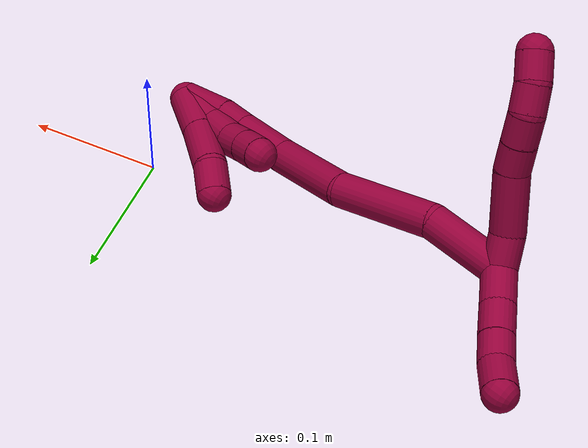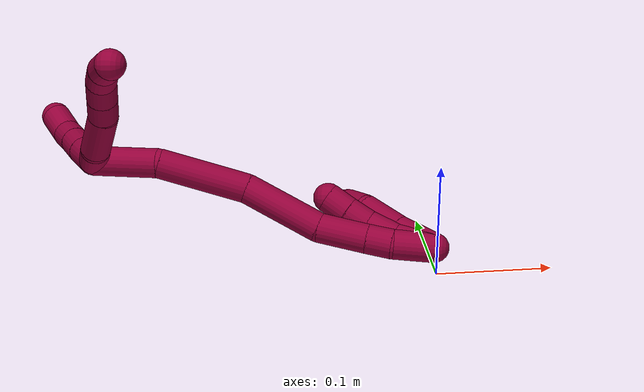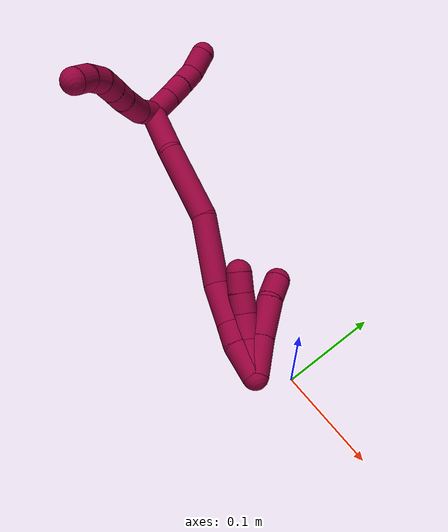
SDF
<sdf version="1.7">
 <world name="default">
  <model name="8">
   <static>0</static>
   <link name="8">
    <collision name="collision-cylinder-e_1_2_8">
     <pose>0.00598 -0.010199 -0.003956 1.94081 0.500253 0.714236</pose>
     <geometry><cylinder><radius>0.0125</radius><length>0.024934</length></cylinder></geometry>
     <surface>
      <friction><ode><mu>1.16</mu><mu2>1.16</mu2><slip1>0</slip1><slip2>0</slip2></ode></friction>
      <contact><ode><kp>1e+06</kp><kd>1</kd><max_vel>0</max_vel><min_depth>0.001</min_depth></ode></contact>
     </surface>
    </collision>
    <visual name="visual-cylinder-e_1_2_8">
     <pose>0.00598 -0.010199 -0.003956 1.94081 0.500253 0.714236</pose>
     <geometry><cylinder><radius>0.0125</radius><length>0.024934</length></cylinder></geometry>
     <material><ambient>0.584314 0 0.227451 1</ambient></material>
    </visual>
    <collision name="collision-cylinder-e_2_8_9">
     <pose>0.027451 -0.034051 -0.01565 2.0864 0.778927 1.2273</pose>
     <geometry><cylinder><radius>0.0125</radius><length>0.044103</length></cylinder></geometry>
     <surface>
      <friction><ode><mu>1.16</mu><mu2>1.16</mu2><slip1>0</slip1><slip2>0</slip2></ode></friction>
      <contact><ode><kp>1e+06</kp><kd>1</kd><max_vel>0</max_vel><min_depth>0.001</min_depth></ode></contact>
     </surface>
    </collision>
    <visual name="visual-cylinder-e_2_8_9">
     <pose>0.027451 -0.034051 -0.01565 2.0864 0.778927 1.2273</pose>
     <geometry><cylinder><radius>0.0125</radius><length>0.044103</length></cylinder></geometry>
     <material><ambient>0.584314 0 0.227451 1</ambient></material>
    </visual>
    <collision name="collision-cylinder-e_3_9_10">
     <pose>0.050465 -0.054224 -0.025049 1.82032 0.841128 1.04445</pose>
     <geometry><cylinder><radius>0.0125</radius><length>0.020185</length></cylinder></geometry>
     <surface>
      <friction><ode><mu>1.16</mu><mu2>1.16</mu2><slip1>0</slip1><slip2>0</slip2></ode></friction>
      <contact><ode><kp>1e+06</kp><kd>1</kd><max_vel>0</max_vel><min_depth>0.001</min_depth></ode></contact>
     </surface>
    </collision>
    <visual name="visual-cylinder-e_3_9_10">
     <pose>0.050465 -0.054224 -0.025049 1.82032 0.841128 1.04445</pose>
     <geometry><cylinder><radius>0.0125</radius><length>0.020185</length></cylinder></geometry>
     <material><ambient>0.584314 0 0.227451 1</ambient></material>
    </visual>
    <collision name="collision-cylinder-e_4_10_11">
     <pose>0.065503 -0.067675 -0.028495 1.82272 0.809731 1.01</pose>
     <geometry><cylinder><radius>0.0125</radius><length>0.020758</length></cylinder></geometry>
     <surface>
      <friction><ode><mu>1.16</mu><mu2>1.16</mu2><slip1>0</slip1><slip2>0</slip2></ode></friction>
      <contact><ode><kp>1e+06</kp><kd>1</kd><max_vel>0</max_vel><min_depth>0.001</min_depth></ode></contact>
     </surface>
    </collision>
    <visual name="visual-cylinder-e_4_10_11">
     <pose>0.065503 -0.067675 -0.028495 1.82272 0.809731 1.01</pose>
     <geometry><cylinder><radius>0.0125</radius><length>0.020758</length></cylinder></geometry>
     <material><ambient>0.584314 0 0.227451 1</ambient></material>
    </visual>
    <collision name="collision-cylinder-e_5_11_12">
     <pose>0.077937 -0.082633 -0.033662 1.96974 0.514083 0.754212</pose>
     <geometry><cylinder><radius>0.0125</radius><length>0.020004</length></cylinder></geometry>
     <surface>
      <friction><ode><mu>1.16</mu><mu2>1.16</mu2><slip1>0</slip1><slip2>0</slip2></ode></friction>
      <contact><ode><kp>1e+06</kp><kd>1</kd><max_vel>0</max_vel><min_depth>0.001</min_depth></ode></contact>
     </surface>
    </collision>
    <visual name="visual-cylinder-e_5_11_12">
     <pose>0.077937 -0.082633 -0.033662 1.96974 0.514083 0.754212</pose>
     <geometry><cylinder><radius>0.0125</radius><length>0.020004</length></cylinder></geometry>
     <material><ambient>0.584314 0 0.227451 1</ambient></material>
    </visual>
    <collision name="collision-cylinder-e_6_12_6">
     <pose>0.085763 -0.098678 -0.042279 2.14908 0.294786 0.535257</pose>
     <geometry><cylinder><radius>0.0125</radius><length>0.020017</length></cylinder></geometry>
     <surface>
      <friction><ode><mu>1.16</mu><mu2>1.16</mu2><slip1>0</slip1><slip2>0</slip2></ode></friction>
      <contact><ode><kp>1e+06</kp><kd>1</kd><max_vel>0</max_vel><min_depth>0.001</min_depth></ode></contact>
     </surface>
    </collision>
    <visual name="visual-cylinder-e_6_12_6">
     <pose>0.085763 -0.098678 -0.042279 2.14908 0.294786 0.535257</pose>
     <geometry><cylinder><radius>0.0125</radius><length>0.020017</length></cylinder></geometry>
     <material><ambient>0.584314 0 0.227451 1</ambient></material>
    </visual>
    <collision name="collision-cylinder-e_1_2_13">
     <pose>0.002491 0.011504 0.008304 -0.945576 0.173769 -0.089045</pose>
     <geometry><cylinder><radius>0.0125</radius><length>0.02881</length></cylinder></geometry>
     <surface>
      <friction><ode><mu>1.16</mu><mu2>1.16</mu2><slip1>0</slip1><slip2>0</slip2></ode></friction>
      <contact><ode><kp>1e+06</kp><kd>1</kd><max_vel>0</max_vel><min_depth>0.001</min_depth></ode></contact>
     </surface>
    </collision>
    <visual name="visual-cylinder-e_1_2_13">
     <pose>0.002491 0.011504 0.008304 -0.945576 0.173769 -0.089045</pose>
     <geometry><cylinder><radius>0.0125</radius><length>0.02881</length></cylinder></geometry>
     <material><ambient>0.584314 0 0.227451 1</ambient></material>
    </visual>
    <collision name="collision-cylinder-e_2_13_14">
     <pose>0.007903 0.032276 0.023292 -0.94596 0.250338 -0.128599</pose>
     <geometry><cylinder><radius>0.0125</radius><length>0.023589</length></cylinder></geometry>
     <surface>
      <friction><ode><mu>1.16</mu><mu2>1.16</mu2><slip1>0</slip1><slip2>0</slip2></ode></friction>
      <contact><ode><kp>1e+06</kp><kd>1</kd><max_vel>0</max_vel><min_depth>0.001</min_depth></ode></contact>
     </surface>
    </collision>
    <visual name="visual-cylinder-e_2_13_14">
     <pose>0.007903 0.032276 0.023292 -0.94596 0.250338 -0.128599</pose>
     <geometry><cylinder><radius>0.0125</radius><length>0.023589</length></cylinder></geometry>
     <material><ambient>0.584314 0 0.227451 1</ambient></material>
    </visual>
    <collision name="collision-cylinder-e_3_14_15">
     <pose>0.013219 0.049758 0.036267 -0.917186 0.227394 -0.112631</pose>
     <geometry><cylinder><radius>0.0125</radius><length>0.02124</length></cylinder></geometry>
     <surface>
      <friction><ode><mu>1.16</mu><mu2>1.16</mu2><slip1>0</slip1><slip2>0</slip2></ode></friction>
      <contact><ode><kp>1e+06</kp><kd>1</kd><max_vel>0</max_vel><min_depth>0.001</min_depth></ode></contact>
     </surface>
    </collision>
    <visual name="visual-cylinder-e_3_14_15">
     <pose>0.013219 0.049758 0.036267 -0.917186 0.227394 -0.112631</pose>
     <geometry><cylinder><radius>0.0125</radius><length>0.02124</length></cylinder></geometry>
     <material><ambient>0.584314 0 0.227451 1</ambient></material>
    </visual>
    <collision name="collision-cylinder-e_4_15_5">
     <pose>0.022152 0.066092 0.050623 -0.788847 0.519059 -0.220142</pose>
     <geometry><cylinder><radius>0.0125</radius><length>0.026362</length></cylinder></geometry>
     <surface>
      <friction><ode><mu>1.16</mu><mu2>1.16</mu2><slip1>0</slip1><slip2>0</slip2></ode></friction>
      <contact><ode><kp>1e+06</kp><kd>1</kd><max_vel>0</max_vel><min_depth>0.001</min_depth></ode></contact>
     </surface>
    </collision>
    <visual name="visual-cylinder-e_4_15_5">
     <pose>0.022152 0.066092 0.050623 -0.788847 0.519059 -0.220142</pose>
     <geometry><cylinder><radius>0.0125</radius><length>0.026362</length></cylinder></geometry>
     <material><ambient>0.584314 0 0.227451 1</ambient></material>
    </visual>
    <collision name="collision-cylinder-e_1_2_16">
     <pose>-1.1e-05 -0.000717 -0.02831 3.11626 -0.000387 -0.030548</pose>
     <geometry><cylinder><radius>0.0125</radius><length>0.056639</length></cylinder></geometry>
     <surface>
      <friction><ode><mu>1.16</mu><mu2>1.16</mu2><slip1>0</slip1><slip2>0</slip2></ode></friction>
      <contact><ode><kp>1e+06</kp><kd>1</kd><max_vel>0</max_vel><min_depth>0.001</min_depth></ode></contact>
     </surface>
    </collision>
    <visual name="visual-cylinder-e_1_2_16">
     <pose>-1.1e-05 -0.000717 -0.02831 3.11626 -0.000387 -0.030548</pose>
     <geometry><cylinder><radius>0.0125</radius><length>0.056639</length></cylinder></geometry>
     <material><ambient>0.584314 0 0.227451 1</ambient></material>
    </visual>
    <collision name="collision-cylinder-e_2_16_17">
     <pose>-0.010308 0.005052 -0.093099 -2.96561 -0.270805 1.99228</pose>
     <geometry><cylinder><radius>0.0125</radius><length>0.076904</length></cylinder></geometry>
     <surface>
      <friction><ode><mu>1.16</mu><mu2>1.16</mu2><slip1>0</slip1><slip2>0</slip2></ode></friction>
      <contact><ode><kp>1e+06</kp><kd>1</kd><max_vel>0</max_vel><min_depth>0.001</min_depth></ode></contact>
     </surface>
    </collision>
    <visual name="visual-cylinder-e_2_16_17">
     <pose>-0.010308 0.005052 -0.093099 -2.96561 -0.270805 1.99228</pose>
     <geometry><cylinder><radius>0.0125</radius><length>0.076904</length></cylinder></geometry>
     <material><ambient>0.584314 0 0.227451 1</ambient></material>
    </visual>
    <collision name="collision-cylinder-e_3_17_18">
     <pose>-0.035616 0.00946 -0.160671 3.07482 -0.449169 -2.85124</pose>
     <geometry><cylinder><radius>0.0125</radius><length>0.069189</length></cylinder></geometry>
     <surface>
      <friction><ode><mu>1.16</mu><mu2>1.16</mu2><slip1>0</slip1><slip2>0</slip2></ode></friction>
      <contact><ode><kp>1e+06</kp><kd>1</kd><max_vel>0</max_vel><min_depth>0.001</min_depth></ode></contact>
     </surface>
    </collision>
    <visual name="visual-cylinder-e_3_17_18">
     <pose>-0.035616 0.00946 -0.160671 3.07482 -0.449169 -2.85124</pose>
     <geometry><cylinder><radius>0.0125</radius><length>0.069189</length></cylinder></geometry>
     <material><ambient>0.584314 0 0.227451 1</ambient></material>
    </visual>
    <collision name="collision-cylinder-e_4_18_19">
     <pose>-0.054368 0.006811 -0.212174 3.11369 -0.180721 -2.83605</pose>
     <geometry><cylinder><radius>0.0125</radius><length>0.041511</length></cylinder></geometry>
     <surface>
      <friction><ode><mu>1.16</mu><mu2>1.16</mu2><slip1>0</slip1><slip2>0</slip2></ode></friction>
      <contact><ode><kp>1e+06</kp><kd>1</kd><max_vel>0</max_vel><min_depth>0.001</min_depth></ode></contact>
     </surface>
    </collision>
    <visual name="visual-cylinder-e_4_18_19">
     <pose>-0.054368 0.006811 -0.212174 3.11369 -0.180721 -2.83605</pose>
     <geometry><cylinder><radius>0.0125</radius><length>0.041511</length></cylinder></geometry>
     <material><ambient>0.584314 0 0.227451 1</ambient></material>
    </visual>
    <collision name="collision-cylinder-e_5_19_20">
     <pose>-0.0598 0.005648 -0.243209 3.08577 -0.158534 -2.46563</pose>
     <geometry><cylinder><radius>0.0125</radius><length>0.021555</length></cylinder></geometry>
     <surface>
      <friction><ode><mu>1.16</mu><mu2>1.16</mu2><slip1>0</slip1><slip2>0</slip2></ode></friction>
      <contact><ode><kp>1e+06</kp><kd>1</kd><max_vel>0</max_vel><min_depth>0.001</min_depth></ode></contact>
     </surface>
    </collision>
    <visual name="visual-cylinder-e_5_19_20">
     <pose>-0.0598 0.005648 -0.243209 3.08577 -0.158534 -2.46563</pose>
     <geometry><cylinder><radius>0.0125</radius><length>0.021555</length></cylinder></geometry>
     <material><ambient>0.584314 0 0.227451 1</ambient></material>
    </visual>
    <collision name="collision-cylinder-e_6_20_1">
     <pose>-0.062719 0.007671 -0.270691 -2.98758 -0.071256 0.865476</pose>
     <geometry><cylinder><radius>0.0125</radius><length>0.034202</length></cylinder></geometry>
     <surface>
      <friction><ode><mu>1.16</mu><mu2>1.16</mu2><slip1>0</slip1><slip2>0</slip2></ode></friction>
      <contact><ode><kp>1e+06</kp><kd>1</kd><max_vel>0</max_vel><min_depth>0.001</min_depth></ode></contact>
     </surface>
    </collision>
    <visual name="visual-cylinder-e_6_20_1">
     <pose>-0.062719 0.007671 -0.270691 -2.98758 -0.071256 0.865476</pose>
     <geometry><cylinder><radius>0.0125</radius><length>0.034202</length></cylinder></geometry>
     <material><ambient>0.584314 0 0.227451 1</ambient></material>
    </visual>
    <collision name="collision-cylinder-e_1_1_21">
     <pose>-0.058803 0.019098 -0.272013 -0.515924 0.27989 -0.074298</pose>
     <geometry><cylinder><radius>0.0125</radius><length>0.037163</length></cylinder></geometry>
     <surface>
      <friction><ode><mu>1.16</mu><mu2>1.16</mu2><slip1>0</slip1><slip2>0</slip2></ode></friction>
      <contact><ode><kp>1e+06</kp><kd>1</kd><max_vel>0</max_vel><min_depth>0.001</min_depth></ode></contact>
     </surface>
    </collision>
    <visual name="visual-cylinder-e_1_1_21">
     <pose>-0.058803 0.019098 -0.272013 -0.515924 0.27989 -0.074298</pose>
     <geometry><cylinder><radius>0.0125</radius><length>0.037163</length></cylinder></geometry>
     <material><ambient>0.584314 0 0.227451 1</ambient></material>
    </visual>
    <collision name="collision-cylinder-e_2_21_22">
     <pose>-0.04687 0.037749 -0.241042 -0.567557 0.355628 -0.10473</pose>
     <geometry><cylinder><radius>0.0125</radius><length>0.039059</length></cylinder></geometry>
     <surface>
      <friction><ode><mu>1.16</mu><mu2>1.16</mu2><slip1>0</slip1><slip2>0</slip2></ode></friction>
      <contact><ode><kp>1e+06</kp><kd>1</kd><max_vel>0</max_vel><min_depth>0.001</min_depth></ode></contact>
     </surface>
    </collision>
    <visual name="visual-cylinder-e_2_21_22">
     <pose>-0.04687 0.037749 -0.241042 -0.567557 0.355628 -0.10473</pose>
     <geometry><cylinder><radius>0.0125</radius><length>0.039059</length></cylinder></geometry>
     <material><ambient>0.584314 0 0.227451 1</ambient></material>
    </visual>
    <collision name="collision-cylinder-e_3_22_4">
     <pose>-0.039195 0.055515 -0.216784 -0.731918 0.073685 -0.028248</pose>
     <geometry><cylinder><radius>0.0125</radius><length>0.023778</length></cylinder></geometry>
     <surface>
      <friction><ode><mu>1.16</mu><mu2>1.16</mu2><slip1>0</slip1><slip2>0</slip2></ode></friction>
      <contact><ode><kp>1e+06</kp><kd>1</kd><max_vel>0</max_vel><min_depth>0.001</min_depth></ode></contact>
     </surface>
    </collision>
    <visual name="visual-cylinder-e_3_22_4">
     <pose>-0.039195 0.055515 -0.216784 -0.731918 0.073685 -0.028248</pose>
     <geometry><cylinder><radius>0.0125</radius><length>0.023778</length></cylinder></geometry>
     <material><ambient>0.584314 0 0.227451 1</ambient></material>
    </visual>
    <collision name="collision-cylinder-e_1_1_23">
     <pose>-0.061216 0.013066 -0.271187 -0.168258 0.162483 -0.013732</pose>
     <geometry><cylinder><radius>0.0125</radius><length>0.03363</length></cylinder></geometry>
     <surface>
      <friction><ode><mu>1.16</mu><mu2>1.16</mu2><slip1>0</slip1><slip2>0</slip2></ode></friction>
      <contact><ode><kp>1e+06</kp><kd>1</kd><max_vel>0</max_vel><min_depth>0.001</min_depth></ode></contact>
     </surface>
    </collision>
    <visual name="visual-cylinder-e_1_1_23">
     <pose>-0.061216 0.013066 -0.271187 -0.168258 0.162483 -0.013732</pose>
     <geometry><cylinder><radius>0.0125</radius><length>0.03363</length></cylinder></geometry>
     <material><ambient>0.584314 0 0.227451 1</ambient></material>
    </visual>
    <collision name="collision-cylinder-e_2_23_24">
     <pose>-0.053576 0.017844 -0.242933 -0.16651 0.387283 -0.032725</pose>
     <geometry><cylinder><radius>0.0125</radius><length>0.026053</length></cylinder></geometry>
     <surface>
      <friction><ode><mu>1.16</mu><mu2>1.16</mu2><slip1>0</slip1><slip2>0</slip2></ode></friction>
      <contact><ode><kp>1e+06</kp><kd>1</kd><max_vel>0</max_vel><min_depth>0.001</min_depth></ode></contact>
     </surface>
    </collision>
    <visual name="visual-cylinder-e_2_23_24">
     <pose>-0.053576 0.017844 -0.242933 -0.16651 0.387283 -0.032725</pose>
     <geometry><cylinder><radius>0.0125</radius><length>0.026053</length></cylinder></geometry>
     <material><ambient>0.584314 0 0.227451 1</ambient></material>
    </visual>
    <collision name="collision-cylinder-e_3_24_25">
     <pose>-0.043471 0.02031 -0.222328 -0.053524 0.536302 -0.01471</pose>
     <geometry><cylinder><radius>0.0125</radius><length>0.020295</length></cylinder></geometry>
     <surface>
      <friction><ode><mu>1.16</mu><mu2>1.16</mu2><slip1>0</slip1><slip2>0</slip2></ode></friction>
      <contact><ode><kp>1e+06</kp><kd>1</kd><max_vel>0</max_vel><min_depth>0.001</min_depth></ode></contact>
     </surface>
    </collision>
    <visual name="visual-cylinder-e_3_24_25">
     <pose>-0.043471 0.02031 -0.222328 -0.053524 0.536302 -0.01471</pose>
     <geometry><cylinder><radius>0.0125</radius><length>0.020295</length></cylinder></geometry>
     <material><ambient>0.584314 0 0.227451 1</ambient></material>
    </visual>
    <collision name="collision-cylinder-e_4_25_3">
     <pose>-0.032919 0.021749 -0.205223 -0.115324 0.565899 -0.033564</pose>
     <geometry><cylinder><radius>0.0125</radius><length>0.020022</length></cylinder></geometry>
     <surface>
      <friction><ode><mu>1.16</mu><mu2>1.16</mu2><slip1>0</slip1><slip2>0</slip2></ode></friction>
      <contact><ode><kp>1e+06</kp><kd>1</kd><max_vel>0</max_vel><min_depth>0.001</min_depth></ode></contact>
     </surface>
    </collision>
    <visual name="visual-cylinder-e_4_25_3">
     <pose>-0.032919 0.021749 -0.205223 -0.115324 0.565899 -0.033564</pose>
     <geometry><cylinder><radius>0.0125</radius><length>0.020022</length></cylinder></geometry>
     <material><ambient>0.584314 0 0.227451 1</ambient></material>
    </visual>
    <collision name="collision-sphere-3">
     <pose>-0.027551 0.022721 -0.196829 0 -0 0</pose>
     <geometry><sphere><radius>0.0125</radius></sphere></geometry>
     <surface>
      <friction><ode><mu>1.16</mu><mu2>1.16</mu2><slip1>0</slip1><slip2>0</slip2></ode></friction>
      <contact><ode><kp>1e+06</kp><kd>1</kd><max_vel>0</max_vel><min_depth>0.001</min_depth></ode></contact>
     </surface>
    </collision>
    <visual name="visual-sphere-3">
     <pose>-0.027551 0.022721 -0.196829 0 -0 0</pose>
     <geometry><sphere><radius>0.0125</radius></sphere></geometry>
     <material><ambient>0.584314 0 0.227451 1</ambient></material>
    </visual>
    <collision name="collision-sphere-25">
     <pose>-0.038287 0.020777 -0.213617 0 -0 0</pose>
     <geometry><sphere><radius>0.0125</radius></sphere></geometry>
     <surface>
      <friction><ode><mu>1.16</mu><mu2>1.16</mu2><slip1>0</slip1><slip2>0</slip2></ode></friction>
      <contact><ode><kp>1e+06</kp><kd>1</kd><max_vel>0</max_vel><min_depth>0.001</min_depth></ode></contact>
     </surface>
    </collision>
    <visual name="visual-sphere-25">
     <pose>-0.038287 0.020777 -0.213617 0 -0 0</pose>
     <geometry><sphere><radius>0.0125</radius></sphere></geometry>
     <material><ambient>0.584314 0 0.227451 1</ambient></material>
    </visual>
    <collision name="collision-sphere-24">
     <pose>-0.048656 0.019843 -0.231038 0 -0 0</pose>
     <geometry><sphere><radius>0.0125</radius></sphere></geometry>
     <surface>
      <friction><ode><mu>1.16</mu><mu2>1.16</mu2><slip1>0</slip1><slip2>0</slip2></ode></friction>
      <contact><ode><kp>1e+06</kp><kd>1</kd><max_vel>0</max_vel><min_depth>0.001</min_depth></ode></contact>
     </surface>
    </collision>
    <visual name="visual-sphere-24">
     <pose>-0.048656 0.019843 -0.231038 0 -0 0</pose>
     <geometry><sphere><radius>0.0125</radius></sphere></geometry>
     <material><ambient>0.584314 0 0.227451 1</ambient></material>
    </visual>
    <collision name="collision-sphere-23">
     <pose>-0.058496 0.015845 -0.254828 0 -0 0</pose>
     <geometry><sphere><radius>0.0125</radius></sphere></geometry>
     <surface>
      <friction><ode><mu>1.16</mu><mu2>1.16</mu2><slip1>0</slip1><slip2>0</slip2></ode></friction>
      <contact><ode><kp>1e+06</kp><kd>1</kd><max_vel>0</max_vel><min_depth>0.001</min_depth></ode></contact>
     </surface>
    </collision>
    <visual name="visual-sphere-23">
     <pose>-0.058496 0.015845 -0.254828 0 -0 0</pose>
     <geometry><sphere><radius>0.0125</radius></sphere></geometry>
     <material><ambient>0.584314 0 0.227451 1</ambient></material>
    </visual>
    <collision name="collision-sphere-4">
     <pose>-0.03832 0.063439 -0.207964 0 -0 0</pose>
     <geometry><sphere><radius>0.0125</radius></sphere></geometry>
     <surface>
      <friction><ode><mu>1.16</mu><mu2>1.16</mu2><slip1>0</slip1><slip2>0</slip2></ode></friction>
      <contact><ode><kp>1e+06</kp><kd>1</kd><max_vel>0</max_vel><min_depth>0.001</min_depth></ode></contact>
     </surface>
    </collision>
    <visual name="visual-sphere-4">
     <pose>-0.03832 0.063439 -0.207964 0 -0 0</pose>
     <geometry><sphere><radius>0.0125</radius></sphere></geometry>
     <material><ambient>0.584314 0 0.227451 1</ambient></material>
    </visual>
    <collision name="collision-sphere-22">
     <pose>-0.040071 0.047591 -0.225605 0 -0 0</pose>
     <geometry><sphere><radius>0.0125</radius></sphere></geometry>
     <surface>
      <friction><ode><mu>1.16</mu><mu2>1.16</mu2><slip1>0</slip1><slip2>0</slip2></ode></friction>
      <contact><ode><kp>1e+06</kp><kd>1</kd><max_vel>0</max_vel><min_depth>0.001</min_depth></ode></contact>
     </surface>
    </collision>
    <visual name="visual-sphere-22">
     <pose>-0.040071 0.047591 -0.225605 0 -0 0</pose>
     <geometry><sphere><radius>0.0125</radius></sphere></geometry>
     <material><ambient>0.584314 0 0.227451 1</ambient></material>
    </visual>
    <collision name="collision-sphere-21">
     <pose>-0.05367 0.027908 -0.256479 0 -0 0</pose>
     <geometry><sphere><radius>0.0125</radius></sphere></geometry>
     <surface>
      <friction><ode><mu>1.16</mu><mu2>1.16</mu2><slip1>0</slip1><slip2>0</slip2></ode></friction>
      <contact><ode><kp>1e+06</kp><kd>1</kd><max_vel>0</max_vel><min_depth>0.001</min_depth></ode></contact>
     </surface>
    </collision>
    <visual name="visual-sphere-21">
     <pose>-0.05367 0.027908 -0.256479 0 -0 0</pose>
     <geometry><sphere><radius>0.0125</radius></sphere></geometry>
     <material><ambient>0.584314 0 0.227451 1</ambient></material>
    </visual>
    <collision name="collision-sphere-1">
     <pose>-0.063936 0.010287 -0.287547 0 -0 0</pose>
     <geometry><sphere><radius>0.0125</radius></sphere></geometry>
     <surface>
      <friction><ode><mu>1.16</mu><mu2>1.16</mu2><slip1>0</slip1><slip2>0</slip2></ode></friction>
      <contact><ode><kp>1e+06</kp><kd>1</kd><max_vel>0</max_vel><min_depth>0.001</min_depth></ode></contact>
     </surface>
    </collision>
    <visual name="visual-sphere-1">
     <pose>-0.063936 0.010287 -0.287547 0 -0 0</pose>
     <geometry><sphere><radius>0.0125</radius></sphere></geometry>
     <material><ambient>0.584314 0 0.227451 1</ambient></material>
    </visual>
    <collision name="collision-sphere-12">
     <pose>0.082855 -0.090658 -0.037045 0 -0 0</pose>
     <geometry><sphere><radius>0.0125</radius></sphere></geometry>
     <surface>
      <friction><ode><mu>1.16</mu><mu2>1.16</mu2><slip1>0</slip1><slip2>0</slip2></ode></friction>
      <contact><ode><kp>1e+06</kp><kd>1</kd><max_vel>0</max_vel><min_depth>0.001</min_depth></ode></contact>
     </surface>
    </collision>
    <visual name="visual-sphere-12">
     <pose>0.082855 -0.090658 -0.037045 0 -0 0</pose>
     <geometry><sphere><radius>0.0125</radius></sphere></geometry>
     <material><ambient>0.584314 0 0.227451 1</ambient></material>
    </visual>
    <collision name="collision-sphere-11">
     <pose>0.073019 -0.074608 -0.030279 0 -0 0</pose>
     <geometry><sphere><radius>0.0125</radius></sphere></geometry>
     <surface>
      <friction><ode><mu>1.16</mu><mu2>1.16</mu2><slip1>0</slip1><slip2>0</slip2></ode></friction>
      <contact><ode><kp>1e+06</kp><kd>1</kd><max_vel>0</max_vel><min_depth>0.001</min_depth></ode></contact>
     </surface>
    </collision>
    <visual name="visual-sphere-11">
     <pose>0.073019 -0.074608 -0.030279 0 -0 0</pose>
     <geometry><sphere><radius>0.0125</radius></sphere></geometry>
     <material><ambient>0.584314 0 0.227451 1</ambient></material>
    </visual>
    <collision name="collision-sphere-10">
     <pose>0.057988 -0.060743 -0.02671 0 -0 0</pose>
     <geometry><sphere><radius>0.0125</radius></sphere></geometry>
     <surface>
      <friction><ode><mu>1.16</mu><mu2>1.16</mu2><slip1>0</slip1><slip2>0</slip2></ode></friction>
      <contact><ode><kp>1e+06</kp><kd>1</kd><max_vel>0</max_vel><min_depth>0.001</min_depth></ode></contact>
     </surface>
    </collision>
    <visual name="visual-sphere-10">
     <pose>0.057988 -0.060743 -0.02671 0 -0 0</pose>
     <geometry><sphere><radius>0.0125</radius></sphere></geometry>
     <material><ambient>0.584314 0 0.227451 1</ambient></material>
    </visual>
    <collision name="collision-sphere-9">
     <pose>0.042942 -0.047704 -0.023387 0 -0 0</pose>
     <geometry><sphere><radius>0.0125</radius></sphere></geometry>
     <surface>
      <friction><ode><mu>1.16</mu><mu2>1.16</mu2><slip1>0</slip1><slip2>0</slip2></ode></friction>
      <contact><ode><kp>1e+06</kp><kd>1</kd><max_vel>0</max_vel><min_depth>0.001</min_depth></ode></contact>
     </surface>
    </collision>
    <visual name="visual-sphere-9">
     <pose>0.042942 -0.047704 -0.023387 0 -0 0</pose>
     <geometry><sphere><radius>0.0125</radius></sphere></geometry>
     <material><ambient>0.584314 0 0.227451 1</ambient></material>
    </visual>
    <collision name="collision-sphere-2">
     <geometry><sphere><radius>0.0125</radius></sphere></geometry>
     <surface>
      <friction><ode><mu>1.16</mu><mu2>1.16</mu2><slip1>0</slip1><slip2>0</slip2></ode></friction>
      <contact><ode><kp>1e+06</kp><kd>1</kd><max_vel>0</max_vel><min_depth>0.001</min_depth></ode></contact>
     </surface>
    </collision>
    <visual name="visual-sphere-2">
     <geometry><sphere><radius>0.0125</radius></sphere></geometry>
     <material><ambient>0.584314 0 0.227451 1</ambient></material>
    </visual>
    <collision name="collision-sphere-19">
     <pose>-0.058098 0.006241 -0.232583 0 -0 0</pose>
     <geometry><sphere><radius>0.0125</radius></sphere></geometry>
     <surface>
      <friction><ode><mu>1.16</mu><mu2>1.16</mu2><slip1>0</slip1><slip2>0</slip2></ode></friction>
      <contact><ode><kp>1e+06</kp><kd>1</kd><max_vel>0</max_vel><min_depth>0.001</min_depth></ode></contact>
     </surface>
    </collision>
    <visual name="visual-sphere-19">
     <pose>-0.058098 0.006241 -0.232583 0 -0 0</pose>
     <geometry><sphere><radius>0.0125</radius></sphere></geometry>
     <material><ambient>0.584314 0 0.227451 1</ambient></material>
    </visual>
    <collision name="collision-sphere-8">
     <pose>0.01196 -0.020398 -0.007912 0 -0 0</pose>
     <geometry><sphere><radius>0.0125</radius></sphere></geometry>
     <surface>
      <friction><ode><mu>1.16</mu><mu2>1.16</mu2><slip1>0</slip1><slip2>0</slip2></ode></friction>
      <contact><ode><kp>1e+06</kp><kd>1</kd><max_vel>0</max_vel><min_depth>0.001</min_depth></ode></contact>
     </surface>
    </collision>
    <visual name="visual-sphere-8">
     <pose>0.01196 -0.020398 -0.007912 0 -0 0</pose>
     <geometry><sphere><radius>0.0125</radius></sphere></geometry>
     <material><ambient>0.584314 0 0.227451 1</ambient></material>
    </visual>
    <collision name="collision-sphere-6">
     <pose>0.088671 -0.106697 -0.047514 0 -0 0</pose>
     <geometry><sphere><radius>0.0125</radius></sphere></geometry>
     <surface>
      <friction><ode><mu>1.16</mu><mu2>1.16</mu2><slip1>0</slip1><slip2>0</slip2></ode></friction>
      <contact><ode><kp>1e+06</kp><kd>1</kd><max_vel>0</max_vel><min_depth>0.001</min_depth></ode></contact>
     </surface>
    </collision>
    <visual name="visual-sphere-6">
     <pose>0.088671 -0.106697 -0.047514 0 -0 0</pose>
     <geometry><sphere><radius>0.0125</radius></sphere></geometry>
     <material><ambient>0.584314 0 0.227451 1</ambient></material>
    </visual>
    <collision name="collision-sphere-13">
     <pose>0.004981 0.023008 0.016608 0 -0 0</pose>
     <geometry><sphere><radius>0.0125</radius></sphere></geometry>
     <surface>
      <friction><ode><mu>1.16</mu><mu2>1.16</mu2><slip1>0</slip1><slip2>0</slip2></ode></friction>
      <contact><ode><kp>1e+06</kp><kd>1</kd><max_vel>0</max_vel><min_depth>0.001</min_depth></ode></contact>
     </surface>
    </collision>
    <visual name="visual-sphere-13">
     <pose>0.004981 0.023008 0.016608 0 -0 0</pose>
     <geometry><sphere><radius>0.0125</radius></sphere></geometry>
     <material><ambient>0.584314 0 0.227451 1</ambient></material>
    </visual>
    <collision name="collision-sphere-14">
     <pose>0.010825 0.041544 0.029976 0 -0 0</pose>
     <geometry><sphere><radius>0.0125</radius></sphere></geometry>
     <surface>
      <friction><ode><mu>1.16</mu><mu2>1.16</mu2><slip1>0</slip1><slip2>0</slip2></ode></friction>
      <contact><ode><kp>1e+06</kp><kd>1</kd><max_vel>0</max_vel><min_depth>0.001</min_depth></ode></contact>
     </surface>
    </collision>
    <visual name="visual-sphere-14">
     <pose>0.010825 0.041544 0.029976 0 -0 0</pose>
     <geometry><sphere><radius>0.0125</radius></sphere></geometry>
     <material><ambient>0.584314 0 0.227451 1</ambient></material>
    </visual>
    <collision name="collision-sphere-15">
     <pose>0.015613 0.057972 0.042559 0 -0 0</pose>
     <geometry><sphere><radius>0.0125</radius></sphere></geometry>
     <surface>
      <friction><ode><mu>1.16</mu><mu2>1.16</mu2><slip1>0</slip1><slip2>0</slip2></ode></friction>
      <contact><ode><kp>1e+06</kp><kd>1</kd><max_vel>0</max_vel><min_depth>0.001</min_depth></ode></contact>
     </surface>
    </collision>
    <visual name="visual-sphere-15">
     <pose>0.015613 0.057972 0.042559 0 -0 0</pose>
     <geometry><sphere><radius>0.0125</radius></sphere></geometry>
     <material><ambient>0.584314 0 0.227451 1</ambient></material>
    </visual>
    <collision name="collision-sphere-5">
     <pose>0.02869 0.074213 0.058688 0 -0 0</pose>
     <geometry><sphere><radius>0.0125</radius></sphere></geometry>
     <surface>
      <friction><ode><mu>1.16</mu><mu2>1.16</mu2><slip1>0</slip1><slip2>0</slip2></ode></friction>
      <contact><ode><kp>1e+06</kp><kd>1</kd><max_vel>0</max_vel><min_depth>0.001</min_depth></ode></contact>
     </surface>
    </collision>
    <visual name="visual-sphere-5">
     <pose>0.02869 0.074213 0.058688 0 -0 0</pose>
     <geometry><sphere><radius>0.0125</radius></sphere></geometry>
     <material><ambient>0.584314 0 0.227451 1</ambient></material>
    </visual>
    <collision name="collision-sphere-16">
     <pose>-2.2e-05 -0.001434 -0.056621 0 -0 0</pose>
     <geometry><sphere><radius>0.0125</radius></sphere></geometry>
     <surface>
      <friction><ode><mu>1.16</mu><mu2>1.16</mu2><slip1>0</slip1><slip2>0</slip2></ode></friction>
      <contact><ode><kp>1e+06</kp><kd>1</kd><max_vel>0</max_vel><min_depth>0.001</min_depth></ode></contact>
     </surface>
    </collision>
    <visual name="visual-sphere-16">
     <pose>-2.2e-05 -0.001434 -0.056621 0 -0 0</pose>
     <geometry><sphere><radius>0.0125</radius></sphere></geometry>
     <material><ambient>0.584314 0 0.227451 1</ambient></material>
    </visual>
    <collision name="collision-sphere-17">
     <pose>-0.020594 0.011539 -0.129578 0 -0 0</pose>
     <geometry><sphere><radius>0.0125</radius></sphere></geometry>
     <surface>
      <friction><ode><mu>1.16</mu><mu2>1.16</mu2><slip1>0</slip1><slip2>0</slip2></ode></friction>
      <contact><ode><kp>1e+06</kp><kd>1</kd><max_vel>0</max_vel><min_depth>0.001</min_depth></ode></contact>
     </surface>
    </collision>
    <visual name="visual-sphere-17">
     <pose>-0.020594 0.011539 -0.129578 0 -0 0</pose>
     <geometry><sphere><radius>0.0125</radius></sphere></geometry>
     <material><ambient>0.584314 0 0.227451 1</ambient></material>
    </visual>
    <collision name="collision-sphere-18">
     <pose>-0.050637 0.00738 -0.191765 0 -0 0</pose>
     <geometry><sphere><radius>0.0125</radius></sphere></geometry>
     <surface>
      <friction><ode><mu>1.16</mu><mu2>1.16</mu2><slip1>0</slip1><slip2>0</slip2></ode></friction>
      <contact><ode><kp>1e+06</kp><kd>1</kd><max_vel>0</max_vel><min_depth>0.001</min_depth></ode></contact>
     </surface>
    </collision>
    <visual name="visual-sphere-18">
     <pose>-0.050637 0.00738 -0.191765 0 -0 0</pose>
     <geometry><sphere><radius>0.0125</radius></sphere></geometry>
     <material><ambient>0.584314 0 0.227451 1</ambient></material>
    </visual>
    <collision name="collision-sphere-20">
     <pose>-0.061501 0.005054 -0.253835 0 -0 0</pose>
     <geometry><sphere><radius>0.0125</radius></sphere></geometry>
     <surface>
      <friction><ode><mu>1.16</mu><mu2>1.16</mu2><slip1>0</slip1><slip2>0</slip2></ode></friction>
      <contact><ode><kp>1e+06</kp><kd>1</kd><max_vel>0</max_vel><min_depth>0.001</min_depth></ode></contact>
     </surface>
    </collision>
    <visual name="visual-sphere-20">
     <pose>-0.061501 0.005054 -0.253835 0 -0 0</pose>
     <geometry><sphere><radius>0.0125</radius></sphere></geometry>
     <material><ambient>0.584314 0 0.227451 1</ambient></material>
    </visual>
    <inertial>
     <pose>-0.014341 0.003912 -0.123265 0 -0 0</pose>
     <mass>0.75</mass>
     <inertia>
      <ixx>5.3e-05</ixx>
      <ixy>0</ixy>
      <ixz>0</ixz>
      <iyy>0.000108</iyy>
      <iyz>0</iyz>
      <izz>-1.2e-05</izz>
     </inertia>
    </inertial>
   </link>
   <pose>-0.287588 0.049616 0.098529 -1.70537 -1.2714 1.42386</pose>
  </model>
 </world>
</sdf>
